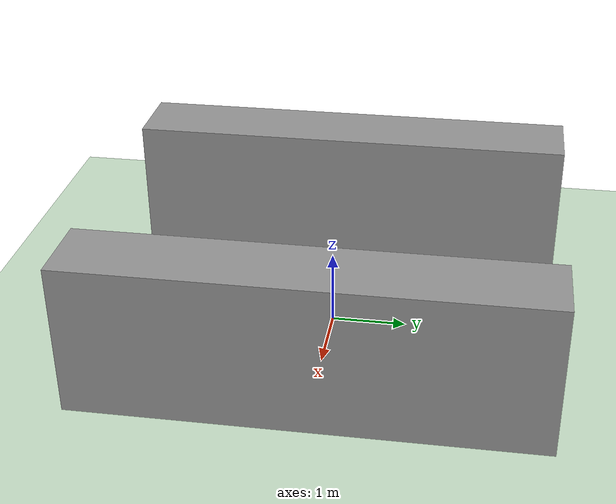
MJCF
<mujoco model="g1_1_warehouse">
  <compiler angle="radian" meshdir="../SDK/unitree_mujoco/unitree_robots/g1/meshes"/>
  <option timestep="0.005" gravity="0 0 -9.81"/>

  <asset>
    <texture type="skybox" builtin="gradient" rgb1=".3 .5 .7" rgb2="0 0 0" width="512" height="512"/>
    <texture name="texplane" type="2d" builtin="checker" rgb1=".2 .3 .4" rgb2=".1 .15 .2" width="512" height="512" mark="cross" markrgb=".8 .8 .8"/>
    <material name="matplane" reflectance="0.3" texture="texplane" texrepeat="1 1" texuniform="true"/>
    <material name="shelf_mat" rgba="0.6 0.6 0.6 1"/>
  </asset>

  <worldbody>
    <light directional="true" diffuse=".8 .8 .8" specular=".2 .2 .2" pos="0 0 5" dir="0 0 -1"/>
    <geom name="floor" pos="0 0 0" size="10 10 .125" type="plane" material="matplane" rgba="0.8 0.9 0.8 1"/>

    <!-- Warehouse Shelf 1 (Left) -->
    <geom name="shelf_1" type="box" size="0.5 3.0 1.0" pos="-2.0 0.0 1.0" material="shelf_mat"/>
    <!-- Warehouse Shelf 2 (Right) -->
    <geom name="shelf_2" type="box" size="0.5 3.0 1.0" pos="2.0 0.0 1.0" material="shelf_mat"/>

    <!-- Robot 1 — spawns slightly to the right -->
    <include file="../SDK/unitree_mujoco/unitree_robots/g1/g1_23dof.xml"/>
  </worldbody>
</mujoco>

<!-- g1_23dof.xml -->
<mujoco model="g1_23dof">
  <compiler angle="radian" meshdir="meshes" />
  <default>
    <default class="leg_motor">
      <joint damping="0.05" armature="0.01" frictionloss="0.2" />
    </default>
    <default class="ankle_motor">
      <joint damping="0.05" armature="0.01" frictionloss="0.2" />
    </default>
    <default class="arm_motor">
      <joint damping="0.05" armature="0.01" frictionloss="0.2" />
    </default>
    <default class="waist_motor">
      <joint damping="0.05" armature="0.01" frictionloss="0.2" />
    </default>

  </default>

  <asset>
    <mesh name="pelvis" file="pelvis.STL" />
    <mesh name="pelvis_contour_link" file="pelvis_contour_link.STL" />
    <mesh name="left_hip_pitch_link" file="left_hip_pitch_link.STL" />
    <mesh name="left_hip_roll_link" file="left_hip_roll_link.STL" />
    <mesh name="left_hip_yaw_link" file="left_hip_yaw_link.STL" />
    <mesh name="left_knee_link" file="left_knee_link.STL" />
    <mesh name="left_ankle_pitch_link" file="left_ankle_pitch_link.STL" />
    <mesh name="left_ankle_roll_link" file="left_ankle_roll_link.STL" />
    <mesh name="right_hip_pitch_link" file="right_hip_pitch_link.STL" />
    <mesh name="right_hip_roll_link" file="right_hip_roll_link.STL" />
    <mesh name="right_hip_yaw_link" file="right_hip_yaw_link.STL" />
    <mesh name="right_knee_link" file="right_knee_link.STL" />
    <mesh name="right_ankle_pitch_link" file="right_ankle_pitch_link.STL" />
    <mesh name="right_ankle_roll_link" file="right_ankle_roll_link.STL" />
    <mesh name="waist_yaw_link" file="waist_yaw_link.STL" />
    <mesh name="torso_link" file="torso_link.STL" />
    <mesh name="logo_link" file="logo_link.STL" />
    <mesh name="head_link" file="head_link.STL" />
    <mesh name="waist_support_link" file="waist_support_link.STL" />
    <mesh name="left_shoulder_pitch_link" file="left_shoulder_pitch_link.STL" />
    <mesh name="left_shoulder_roll_link" file="left_shoulder_roll_link.STL" />
    <mesh name="left_shoulder_yaw_link" file="left_shoulder_yaw_link.STL" />
    <mesh name="left_elbow_link" file="left_elbow_link.STL" />
    <mesh name="left_wrist_roll_rubber_hand" file="left_wrist_roll_rubber_hand.STL" />
    <mesh name="right_shoulder_pitch_link" file="right_shoulder_pitch_link.STL" />
    <mesh name="right_shoulder_roll_link" file="right_shoulder_roll_link.STL" />
    <mesh name="right_shoulder_yaw_link" file="right_shoulder_yaw_link.STL" />
    <mesh name="right_elbow_link" file="right_elbow_link.STL" />
    <mesh name="right_wrist_roll_rubber_hand" file="right_wrist_roll_rubber_hand.STL" />
  </asset>

  <worldbody>
    <body name="pelvis" pos="0 0 0.793">
      <site name="imu" size="0.01" pos="0.0 0.0 0.0" />
      <inertial pos="0 0 -0.07605" quat="1 0 -0.000399148 0" mass="3.813"
        diaginertia="0.010549 0.0093089 0.0079184" />
      <joint name="floating_base_joint" type="free" limited="false" actuatorfrclimited="false" />
      <geom type="mesh" contype="0" conaffinity="0" group="1" density="0" rgba="0.2 0.2 0.2 1"
        mesh="pelvis" />
      <geom type="mesh" contype="0" conaffinity="0" group="1" density="0" rgba="0.7 0.7 0.7 1"
        mesh="pelvis_contour_link" />
      <geom type="mesh" rgba="0.7 0.7 0.7 1" mesh="pelvis_contour_link" />
      <body name="left_hip_pitch_link" pos="0 0.064452 -0.1027">
        <inertial pos="0.002741 0.047791 -0.02606" quat="0.954862 0.293964 0.0302556 0.030122"
          mass="1.35" diaginertia="0.00181517 0.00153422 0.00116212" />
        <joint name="left_hip_pitch_joint" pos="0 0 0" axis="0 1 0" range="-2.5307 2.8798"
          actuatorfrcrange="-88 88" class="leg_motor" />
        <geom type="mesh" contype="0" conaffinity="0" group="1" density="0" rgba="0.2 0.2 0.2 1"
          mesh="left_hip_pitch_link" />
        <geom type="mesh" rgba="0.2 0.2 0.2 1" mesh="left_hip_pitch_link" />
        <body name="left_hip_roll_link" pos="0 0.052 -0.030465" quat="0.996179 0 -0.0873386 0">
          <inertial pos="0.029812 -0.001045 -0.087934"
            quat="0.977808 -1.97119e-05 0.205576 -0.0403793" mass="1.52"
            diaginertia="0.00254986 0.00241169 0.00148755" />
          <joint name="left_hip_roll_joint" pos="0 0 0" axis="1 0 0" range="-0.5236 2.9671"
            actuatorfrcrange="-88 88" class="leg_motor" />
          <geom type="mesh" contype="0" conaffinity="0" group="1" density="0" rgba="0.7 0.7 0.7 1"
            mesh="left_hip_roll_link" />
          <geom type="mesh" rgba="0.7 0.7 0.7 1" mesh="left_hip_roll_link" />
          <body name="left_hip_yaw_link" pos="0.025001 0 -0.12412">
            <inertial pos="-0.057709 -0.010981 -0.15078" quat="0.600598 0.15832 0.223482 0.751181"
              mass="1.702" diaginertia="0.00776166 0.00717575 0.00160139" />
            <joint name="left_hip_yaw_joint" pos="0 0 0" axis="0 0 1" range="-2.7576 2.7576"
              actuatorfrcrange="-88 88" class="leg_motor" />
            <geom type="mesh" contype="0" conaffinity="0" group="1" density="0" rgba="0.7 0.7 0.7 1"
              mesh="left_hip_yaw_link" />
            <geom type="mesh" rgba="0.7 0.7 0.7 1" mesh="left_hip_yaw_link" />
            <body name="left_knee_link" pos="-0.078273 0.0021489 -0.17734"
              quat="0.996179 0 0.0873386 0">
              <inertial pos="0.005457 0.003964 -0.12074"
                quat="0.923418 -0.0327699 0.0158246 0.382067" mass="1.932"
                diaginertia="0.0113804 0.0112778 0.00146458" />
              <joint name="left_knee_joint" pos="0 0 0" axis="0 1 0" range="-0.087267 2.8798"
                actuatorfrcrange="-139 139" class="leg_motor" />
              <geom type="mesh" contype="0" conaffinity="0" group="1" density="0"
                rgba="0.7 0.7 0.7 1" mesh="left_knee_link" />
              <geom type="mesh" rgba="0.7 0.7 0.7 1" mesh="left_knee_link" />
              <body name="left_ankle_pitch_link" pos="0 -9.4445e-05 -0.30001">
                <inertial pos="-0.007269 0 0.011137" quat="0.603053 0.369225 0.369225 0.603053"
                  mass="0.074" diaginertia="1.89e-05 1.40805e-05 6.9195e-06" />
                <joint name="left_ankle_pitch_joint" pos="0 0 0" axis="0 1 0"
                  range="-0.87267 0.5236" actuatorfrcrange="-50 50" class="ankle_motor" />
                <geom type="mesh" contype="0" conaffinity="0" group="1" density="0"
                  rgba="0.7 0.7 0.7 1" mesh="left_ankle_pitch_link" />
                <geom type="mesh" rgba="0.7 0.7 0.7 1" mesh="left_ankle_pitch_link" />
                <body name="left_ankle_roll_link" pos="0 0 -0.017558">
                  <inertial pos="0.026505 0 -0.016425"
                    quat="-0.000481092 0.728482 -0.000618967 0.685065" mass="0.608"
                    diaginertia="0.00167218 0.0016161 0.000217621" />
                  <joint name="left_ankle_roll_joint" pos="0 0 0" axis="1 0 0"
                    range="-0.2618 0.2618" actuatorfrcrange="-50 50" class="ankle_motor" />
                  <geom type="mesh" contype="0" conaffinity="0" group="1" density="0"
                    rgba="0.2 0.2 0.2 1" mesh="left_ankle_roll_link" />
                  <geom size="0.005" pos="-0.05 0.025 -0.03" rgba="0.2 0.2 0.2 1" />
                  <geom size="0.005" pos="-0.05 -0.025 -0.03" rgba="0.2 0.2 0.2 1" />
                  <geom size="0.005" pos="0.12 0.03 -0.03" rgba="0.2 0.2 0.2 1" />
                  <geom size="0.005" pos="0.12 -0.03 -0.03" rgba="0.2 0.2 0.2 1" />
                </body>
              </body>
            </body>
          </body>
        </body>
      </body>
      <body name="right_hip_pitch_link" pos="0 -0.064452 -0.1027">
        <inertial pos="0.002741 -0.047791 -0.02606" quat="0.954862 -0.293964 0.0302556 -0.030122"
          mass="1.35" diaginertia="0.00181517 0.00153422 0.00116212" />
        <joint name="right_hip_pitch_joint" pos="0 0 0" axis="0 1 0" range="-2.5307 2.8798"
          actuatorfrcrange="-88 88" class="leg_motor" />
        <geom type="mesh" contype="0" conaffinity="0" group="1" density="0" rgba="0.2 0.2 0.2 1"
          mesh="right_hip_pitch_link" />
        <geom type="mesh" rgba="0.2 0.2 0.2 1" mesh="right_hip_pitch_link" />
        <body name="right_hip_roll_link" pos="0 -0.052 -0.030465" quat="0.996179 0 -0.0873386 0">
          <inertial pos="0.029812 0.001045 -0.087934" quat="0.977808 1.97119e-05 0.205576 0.0403793"
            mass="1.52" diaginertia="0.00254986 0.00241169 0.00148755" />
          <joint name="right_hip_roll_joint" pos="0 0 0" axis="1 0 0" range="-2.9671 0.5236"
            actuatorfrcrange="-88 88" class="leg_motor" />
          <geom type="mesh" contype="0" conaffinity="0" group="1" density="0" rgba="0.7 0.7 0.7 1"
            mesh="right_hip_roll_link" />
          <geom type="mesh" rgba="0.7 0.7 0.7 1" mesh="right_hip_roll_link" />
          <body name="right_hip_yaw_link" pos="0.025001 0 -0.12412">
            <inertial pos="-0.057709 0.010981 -0.15078" quat="0.751181 0.223482 0.15832 0.600598"
              mass="1.702" diaginertia="0.00776166 0.00717575 0.00160139" />
            <joint name="right_hip_yaw_joint" pos="0 0 0" axis="0 0 1" range="-2.7576 2.7576"
              actuatorfrcrange="-88 88" class="leg_motor" />
            <geom type="mesh" contype="0" conaffinity="0" group="1" density="0" rgba="0.7 0.7 0.7 1"
              mesh="right_hip_yaw_link" />
            <geom type="mesh" rgba="0.7 0.7 0.7 1" mesh="right_hip_yaw_link" />
            <body name="right_knee_link" pos="-0.078273 -0.0021489 -0.17734"
              quat="0.996179 0 0.0873386 0">
              <inertial pos="0.005457 -0.003964 -0.12074"
                quat="0.923439 0.0345276 0.0116333 -0.382012" mass="1.932"
                diaginertia="0.011374 0.0112843 0.00146452" />
              <joint name="right_knee_joint" pos="0 0 0" axis="0 1 0" range="-0.087267 2.8798"
                actuatorfrcrange="-139 139" class="leg_motor" />
              <geom type="mesh" contype="0" conaffinity="0" group="1" density="0"
                rgba="0.7 0.7 0.7 1" mesh="right_knee_link" />
              <geom type="mesh" rgba="0.7 0.7 0.7 1" mesh="right_knee_link" />
              <body name="right_ankle_pitch_link" pos="0 9.4445e-05 -0.30001">
                <inertial pos="-0.007269 0 0.011137" quat="0.603053 0.369225 0.369225 0.603053"
                  mass="0.074" diaginertia="1.89e-05 1.40805e-05 6.9195e-06" />
                <joint name="right_ankle_pitch_joint" pos="0 0 0" axis="0 1 0"
                  range="-0.87267 0.5236" actuatorfrcrange="-50 50" class="ankle_motor" />
                <geom type="mesh" contype="0" conaffinity="0" group="1" density="0"
                  rgba="0.7 0.7 0.7 1" mesh="right_ankle_pitch_link" />
                <geom type="mesh" rgba="0.7 0.7 0.7 1" mesh="right_ankle_pitch_link" />
                <body name="right_ankle_roll_link" pos="0 0 -0.017558">
                  <inertial pos="0.026505 0 -0.016425"
                    quat="0.000481092 0.728482 0.000618967 0.685065" mass="0.608"
                    diaginertia="0.00167218 0.0016161 0.000217621" />
                  <joint name="right_ankle_roll_joint" pos="0 0 0" axis="1 0 0"
                    range="-0.2618 0.2618" actuatorfrcrange="-50 50" class="ankle_motor" />
                  <geom type="mesh" contype="0" conaffinity="0" group="1" density="0"
                    rgba="0.2 0.2 0.2 1" mesh="right_ankle_roll_link" />
                  <geom size="0.005" pos="-0.05 0.025 -0.03" rgba="0.2 0.2 0.2 1" />
                  <geom size="0.005" pos="-0.05 -0.025 -0.03" rgba="0.2 0.2 0.2 1" />
                  <geom size="0.005" pos="0.12 0.03 -0.03" rgba="0.2 0.2 0.2 1" />
                  <geom size="0.005" pos="0.12 -0.03 -0.03" rgba="0.2 0.2 0.2 1" />
                </body>
              </body>
            </body>
          </body>
        </body>
      </body>
      <body name="torso_link" pos="-0.0039635 0 0.054">
        <inertial pos="0.0034309 0.00025505 0.174524"
          quat="0.99988 0.000261157 0.0149809 -0.0038211" mass="9.842"
          diaginertia="0.135151 0.123088 0.0327256" />
        <joint name="waist_yaw_joint" pos="0 0 0" axis="0 0 1" range="-2.618 2.618"
          actuatorfrcrange="-88 88" class="waist_motor" />
        <geom type="mesh" contype="0" conaffinity="0" group="1" density="0" rgba="0.7 0.7 0.7 1"
          mesh="torso_link" />
        <geom type="mesh" rgba="0.7 0.7 0.7 1" mesh="torso_link" />
        <geom pos="0.0039635 0 -0.054" quat="1 0 0 0" type="mesh" contype="0" conaffinity="0"
          group="1" density="0" rgba="0.7 0.7 0.7 1" mesh="waist_yaw_link" />
        <geom pos="0.0039635 0 -0.054" quat="1 0 0 0" type="mesh" contype="0" conaffinity="0"
          group="1" density="0" rgba="0.2 0.2 0.2 1" mesh="logo_link" />
        <geom pos="0.0039635 0 -0.054" quat="1 0 0 0" type="mesh" rgba="0.2 0.2 0.2 1"
          mesh="logo_link" />
        <geom pos="0.0039635 0 -0.054" type="mesh" contype="0" conaffinity="0" group="1" density="0"
          rgba="0.2 0.2 0.2 1" mesh="head_link" />
        <geom pos="0.0039635 0 -0.054" type="mesh" rgba="0.2 0.2 0.2 1" mesh="head_link" />
        <camera name="head_camera" pos="0.15 0 0.45" quat="0.5 -0.5 0.5 -0.5" fovy="90" />
        <geom pos="0.0039635 0 -0.054" quat="1 0 0 0" type="mesh" contype="0" conaffinity="0"
          group="1" density="0" rgba="0.7 0.7 0.7 1" mesh="waist_support_link" />
        <geom pos="0.0039635 0 -0.054" quat="1 0 0 0" type="mesh" rgba="0.7 0.7 0.7 1"
          mesh="waist_support_link" />
        <site name="secondary_imu" size="0.01" pos="-0.03959 -0.00224 0.13792"/>
        <body name="left_shoulder_pitch_link" pos="0.0039563 0.10022 0.23778"
          quat="0.990264 0.139201 1.38722e-05 -9.86868e-05">
          <inertial pos="0 0.035892 -0.011628" quat="0.654152 0.0130458 -0.326267 0.68225"
            mass="0.718" diaginertia="0.000465864 0.000432842 0.000406394" />
          <joint name="left_shoulder_pitch_joint" pos="0 0 0" axis="0 1 0" range="-3.0892 2.6704"
            actuatorfrcrange="-25 25" class="arm_motor" />
          <geom type="mesh" contype="0" conaffinity="0" group="1" density="0" rgba="0.7 0.7 0.7 1"
            mesh="left_shoulder_pitch_link" />
          <geom size="0.03 0.025" pos="0 0.04 -0.01" quat="0.707107 0 0.707107 0" type="cylinder"
            rgba="0.7 0.7 0.7 1" />
          <body name="left_shoulder_roll_link" pos="0 0.038 -0.013831" quat="0.990268 -0.139172 0 0">
            <inertial pos="-0.000227 0.00727 -0.063243"
              quat="0.701256 -0.0196223 -0.00710317 0.712604" mass="0.643"
              diaginertia="0.000691311 0.000618011 0.000388977" />
            <joint name="left_shoulder_roll_joint" pos="0 0 0" axis="1 0 0" range="-1.5882 2.2515"
              actuatorfrcrange="-25 25" class="arm_motor" />
            <geom type="mesh" contype="0" conaffinity="0" group="1" density="0" rgba="0.7 0.7 0.7 1"
              mesh="left_shoulder_roll_link" />
            <geom size="0.03 0.015" pos="-0.004 0.006 -0.053" type="cylinder" rgba="0.7 0.7 0.7 1" />
            <body name="left_shoulder_yaw_link" pos="0 0.00624 -0.1032">
              <inertial pos="0.010773 -0.002949 -0.072009"
                quat="0.716879 -0.0964829 -0.0679942 0.687134" mass="0.734"
                diaginertia="0.00106187 0.00103217 0.000400661" />
              <joint name="left_shoulder_yaw_joint" pos="0 0 0" axis="0 0 1" range="-2.618 2.618"
                actuatorfrcrange="-25 25" class="arm_motor" />
              <geom type="mesh" contype="0" conaffinity="0" group="1" density="0"
                rgba="0.7 0.7 0.7 1" mesh="left_shoulder_yaw_link" />
              <geom type="mesh" rgba="0.7 0.7 0.7 1" mesh="left_shoulder_yaw_link" />
              <body name="left_elbow_link" pos="0.015783 0 -0.080518">
                <inertial pos="0.064956 0.004454 -0.010062"
                  quat="0.541765 0.636132 0.388821 0.388129" mass="0.6"
                  diaginertia="0.000443035 0.000421612 0.000259353" />
                <joint name="left_elbow_joint" pos="0 0 0" axis="0 1 0" range="-1.0472 2.0944"
                  actuatorfrcrange="-25 25" class="arm_motor" />
                <geom type="mesh" contype="0" conaffinity="0" group="1" density="0"
                  rgba="0.7 0.7 0.7 1" mesh="left_elbow_link" />
                <geom type="mesh" rgba="0.7 0.7 0.7 1" mesh="left_elbow_link" />
                <body name="left_wrist_roll_rubber_hand" pos="0.1 0.00188791 -0.01">
                  <inertial pos="0.107947 0.00163512 0.00202245"
                    quat="0.494051 0.504265 0.48416 0.516933" mass="0.356929"
                    diaginertia="0.00200292 0.0019426 0.000195232" />
                  <joint name="left_wrist_roll_joint" pos="0 0 0" axis="1 0 0"
                    range="-1.97222 1.97222" actuatorfrcrange="-25 25" class="arm_motor" />
                  <geom type="mesh" contype="0" conaffinity="0" group="1" density="0"
                    rgba="0.7 0.7 0.7 1" mesh="left_wrist_roll_rubber_hand" />
                  <geom type="mesh" rgba="0.7 0.7 0.7 1" mesh="left_wrist_roll_rubber_hand" />
                </body>
              </body>
            </body>
          </body>
        </body>
        <body name="right_shoulder_pitch_link" pos="0.0039563 -0.10021 0.23778"
          quat="0.990264 -0.139201 1.38722e-05 9.86868e-05">
          <inertial pos="0 -0.035892 -0.011628" quat="0.68225 -0.326267 0.0130458 0.654152"
            mass="0.718" diaginertia="0.000465864 0.000432842 0.000406394" />
          <joint name="right_shoulder_pitch_joint" pos="0 0 0" axis="0 1 0" range="-3.0892 2.6704"
            actuatorfrcrange="-25 25" class="arm_motor" />
          <geom type="mesh" contype="0" conaffinity="0" group="1" density="0" rgba="0.7 0.7 0.7 1"
            mesh="right_shoulder_pitch_link" />
          <geom size="0.03 0.025" pos="0 -0.04 -0.01" quat="0.707107 0 0.707107 0" type="cylinder"
            rgba="0.7 0.7 0.7 1" />
          <body name="right_shoulder_roll_link" pos="0 -0.038 -0.013831"
            quat="0.990268 0.139172 0 0">
            <inertial pos="-0.000227 -0.00727 -0.063243"
              quat="0.712604 -0.00710317 -0.0196223 0.701256" mass="0.643"
              diaginertia="0.000691311 0.000618011 0.000388977" />
            <joint name="right_shoulder_roll_joint" pos="0 0 0" axis="1 0 0" range="-2.2515 1.5882"
              actuatorfrcrange="-25 25" class="arm_motor" />
            <geom type="mesh" contype="0" conaffinity="0" group="1" density="0" rgba="0.7 0.7 0.7 1"
              mesh="right_shoulder_roll_link" />
            <geom size="0.03 0.015" pos="-0.004 -0.006 -0.053" type="cylinder" rgba="0.7 0.7 0.7 1" />
            <body name="right_shoulder_yaw_link" pos="0 -0.00624 -0.1032">
              <inertial pos="0.010773 0.002949 -0.072009"
                quat="0.687134 -0.0679942 -0.0964829 0.716879" mass="0.734"
                diaginertia="0.00106187 0.00103217 0.000400661" />
              <joint name="right_shoulder_yaw_joint" pos="0 0 0" axis="0 0 1" range="-2.618 2.618"
                actuatorfrcrange="-25 25" class="arm_motor" />
              <geom type="mesh" contype="0" conaffinity="0" group="1" density="0"
                rgba="0.7 0.7 0.7 1" mesh="right_shoulder_yaw_link" />
              <geom type="mesh" rgba="0.7 0.7 0.7 1" mesh="right_shoulder_yaw_link" />
              <body name="right_elbow_link" pos="0.015783 0 -0.080518">
                <inertial pos="0.064956 -0.004454 -0.010062"
                  quat="0.388129 0.388821 0.636132 0.541765" mass="0.6"
                  diaginertia="0.000443035 0.000421612 0.000259353" />
                <joint name="right_elbow_joint" pos="0 0 0" axis="0 1 0" range="-1.0472 2.0944"
                  actuatorfrcrange="-25 25" class="arm_motor" />
                <geom type="mesh" contype="0" conaffinity="0" group="1" density="0"
                  rgba="0.7 0.7 0.7 1" mesh="right_elbow_link" />
                <geom type="mesh" rgba="0.7 0.7 0.7 1" mesh="right_elbow_link" />
                <body name="right_wrist_roll_rubber_hand" pos="0.1 -0.00188791 -0.01">
                  <inertial pos="0.107947 -0.00163512 0.00202245"
                    quat="0.516933 0.48416 0.504265 0.494051" mass="0.356929"
                    diaginertia="0.00200292 0.0019426 0.000195232" />
                  <joint name="right_wrist_roll_joint" pos="0 0 0" axis="1 0 0"
                    range="-1.97222 1.97222" actuatorfrcrange="-25 25" class="arm_motor" />
                  <geom type="mesh" contype="0" conaffinity="0" group="1" density="0"
                    rgba="0.7 0.7 0.7 1" mesh="right_wrist_roll_rubber_hand" />
                  <geom type="mesh" rgba="0.7 0.7 0.7 1" mesh="right_wrist_roll_rubber_hand" />
                </body>
              </body>
            </body>
          </body>
        </body>
      </body>
    </body>
    <body name="waist_roll" pos="0 0 20">
      <inertial pos="0.0 0.0 0.0" mass="1e-03"
        diaginertia="1e-03 1e-03 1e-03" />
      <joint name="waist_roll_joint" />
    </body>
    <body name="waist_pitch" pos="0 0 20">
      <inertial pos="0.0 0.0 0.0" mass="1e-03"
        diaginertia="1e-03 1e-03 1e-03" />
      <joint name="waist_pitch_joint" />
    </body>
    <body name="left_wrist_pitch" pos="0 0 20">
      <inertial pos="0.0 0.0 0.0" mass="1e-03"
        diaginertia="1e-03 1e-03 1e-03" />
      <joint name="left_wrist_pitch_joint" />
    </body>
    <body name="left_wrist_yaw" pos="0 0 20">
      <inertial pos="0.0 0.0 0.0" mass="1e-03"
        diaginertia="1e-03 1e-03 1e-03" />
      <joint name="left_wrist_yaw_joint" />
    </body>
    <body name="right_wrist_pitch" pos="0 0 20">
      <inertial pos="0.0 0.0 0.0" mass="1e-03"
        diaginertia="1e-03 1e-03 1e-03" />
      <joint name="right_wrist_pitch_joint" />
    </body>
    <body name="right_wrist_yaw" pos="0 0 20">
      <inertial pos="0.0 0.0 0.0" mass="1e-03"
        diaginertia="1e-03 1e-03 1e-03" />
      <joint name="right_wrist_yaw_joint" />
    </body>
  </worldbody>

  <actuator>
    <motor name="left_hip_pitch" joint="left_hip_pitch_joint" ctrlrange="-88 88" />
    <motor name="left_hip_roll" joint="left_hip_roll_joint" ctrlrange="-88 88" />
    <motor name="left_hip_yaw" joint="left_hip_yaw_joint" ctrlrange="-88 88" />
    <motor name="left_knee" joint="left_knee_joint" ctrlrange="-139 139" />
    <motor name="left_ankle_pitch" joint="left_ankle_pitch_joint" ctrlrange="-50 50" />
    <motor name="left_ankle_roll" joint="left_ankle_roll_joint" ctrlrange="-50 50" />

    <motor name="right_hip_pitch" joint="right_hip_pitch_joint" ctrlrange="-88 88" />
    <motor name="right_hip_roll" joint="right_hip_roll_joint" ctrlrange="-88 88" />
    <motor name="right_hip_yaw" joint="right_hip_yaw_joint" ctrlrange="-88 88" />
    <motor name="right_knee" joint="right_knee_joint" ctrlrange="-139 139" />
    <motor name="right_ankle_pitch" joint="right_ankle_pitch_joint" ctrlrange="-50 50" />
    <motor name="right_ankle_roll" joint="right_ankle_roll_joint" ctrlrange="-50 50" />

    <motor name="waist_yaw" joint="waist_yaw_joint" ctrlrange="-88 88" />
    <motor name="waist_roll" joint="waist_roll_joint" ctrlrange="-50 50" />
    <motor name="waist_pitch" joint="waist_pitch_joint" ctrlrange="-50 50" />

    <motor name="left_shoulder_pitch" joint="left_shoulder_pitch_joint" ctrlrange="-25 25" />
    <motor name="left_shoulder_roll" joint="left_shoulder_roll_joint" ctrlrange="-25 25" />
    <motor name="left_shoulder_yaw" joint="left_shoulder_yaw_joint" ctrlrange="-25 25" />
    <motor name="left_elbow" joint="left_elbow_joint" ctrlrange="-25 25" />
    <motor name="left_wrist_roll" joint="left_wrist_roll_joint" ctrlrange="-25 25" />
    <motor name="left_wrist_pitch" joint="left_wrist_pitch_joint" ctrlrange="-5 5" />
    <motor name="left_wrist_yaw" joint="left_wrist_yaw_joint" ctrlrange="-5 5" />

    <motor name="right_shoulder_pitch" joint="right_shoulder_pitch_joint" ctrlrange="-25 25" />
    <motor name="right_shoulder_roll" joint="right_shoulder_roll_joint" ctrlrange="-25 25" />
    <motor name="right_shoulder_yaw" joint="right_shoulder_yaw_joint" ctrlrange="-25 25" />
    <motor name="right_elbow" joint="right_elbow_joint" ctrlrange="-25 25" />
    <motor name="right_wrist_roll" joint="right_wrist_roll_joint" ctrlrange="-25 25" />
    <motor name="right_wrist_pitch" joint="right_wrist_pitch_joint" ctrlrange="-5 5" />
    <motor name="right_wrist_yaw" joint="right_wrist_yaw_joint" ctrlrange="-5 5" />
  </actuator>

  <sensor>
    <jointpos name="left_hip_pitch_pos" joint="left_hip_pitch_joint" />
    <jointpos name="left_hip_roll_pos" joint="left_hip_roll_joint" />
    <jointpos name="left_hip_yaw_pos" joint="left_hip_yaw_joint" />
    <jointpos name="left_knee_pos" joint="left_knee_joint" />
    <jointpos name="left_ankle_pitch_pos" joint="left_ankle_pitch_joint" />
    <jointpos name="left_ankle_roll_pos" joint="left_ankle_roll_joint" />
    <jointpos name="right_hip_pitch_pos" joint="right_hip_pitch_joint" />
    <jointpos name="right_hip_roll_pos" joint="right_hip_roll_joint" />
    <jointpos name="right_hip_yaw_pos" joint="right_hip_yaw_joint" />
    <jointpos name="right_knee_pos" joint="right_knee_joint" />
    <jointpos name="right_ankle_pitch_pos" joint="right_ankle_pitch_joint" />
    <jointpos name="right_ankle_roll_pos" joint="right_ankle_roll_joint" />
    <jointpos name="waist_yaw_pos" joint="waist_yaw_joint" />
    <jointpos name="waist_roll_pos" joint="waist_roll_joint" />
    <jointpos name="waist_pitch_pos" joint="waist_pitch_joint" />
    <jointpos name="left_shoulder_pitch_pos" joint="left_shoulder_pitch_joint" />
    <jointpos name="left_shoulder_roll_pos" joint="left_shoulder_roll_joint" />
    <jointpos name="left_shoulder_yaw_pos" joint="left_shoulder_yaw_joint" />
    <jointpos name="left_elbow_pos" joint="left_elbow_joint" />
    <jointpos name="left_wrist_roll_pos" joint="left_wrist_roll_joint" />
    <jointpos name="left_wrist_pitch_pos" joint="left_wrist_pitch_joint" />
    <jointpos name="left_wrist_yaw_pos" joint="left_wrist_yaw_joint" />
    <jointpos name="right_shoulder_pitch_pos" joint="right_shoulder_pitch_joint" />
    <jointpos name="right_shoulder_roll_pos" joint="right_shoulder_roll_joint" />
    <jointpos name="right_shoulder_yaw_pos" joint="right_shoulder_yaw_joint" />
    <jointpos name="right_elbow_pos" joint="right_elbow_joint" />
    <jointpos name="right_wrist_roll_pos" joint="right_wrist_roll_joint" />
    <jointpos name="right_wrist_pitch_pos" joint="right_wrist_pitch_joint" />
    <jointpos name="right_wrist_yaw_pos" joint="right_wrist_yaw_joint" />

    <jointvel name="left_hip_pitch_vel" joint="left_hip_pitch_joint" />
    <jointvel name="left_hip_roll_vel" joint="left_hip_roll_joint" />
    <jointvel name="left_hip_yaw_vel" joint="left_hip_yaw_joint" />
    <jointvel name="left_knee_vel" joint="left_knee_joint" />
    <jointvel name="left_ankle_pitch_vel" joint="left_ankle_pitch_joint" />
    <jointvel name="left_ankle_roll_vel" joint="left_ankle_roll_joint" />
    <jointvel name="right_hip_pitch_vel" joint="right_hip_pitch_joint" />
    <jointvel name="right_hip_roll_vel" joint="right_hip_roll_joint" />
    <jointvel name="right_hip_yaw_vel" joint="right_hip_yaw_joint" />
    <jointvel name="right_knee_vel" joint="right_knee_joint" />
    <jointvel name="right_ankle_pitch_vel" joint="right_ankle_pitch_joint" />
    <jointvel name="right_ankle_roll_vel" joint="right_ankle_roll_joint" />
    <jointvel name="waist_yaw_vel" joint="waist_yaw_joint" />
    <jointvel name="waist_roll_vel" joint="waist_roll_joint" />
    <jointvel name="waist_pitch_vel" joint="waist_pitch_joint" />
    <jointvel name="left_shoulder_pitch_vel" joint="left_shoulder_pitch_joint" />
    <jointvel name="left_shoulder_roll_vel" joint="left_shoulder_roll_joint" />
    <jointvel name="left_shoulder_yaw_vel" joint="left_shoulder_yaw_joint" />
    <jointvel name="left_elbow_vel" joint="left_elbow_joint" />
    <jointvel name="left_wrist_roll_vel" joint="left_wrist_roll_joint" />
    <jointvel name="left_wrist_pitch_vel" joint="left_wrist_pitch_joint" />
    <jointvel name="left_wrist_yaw_vel" joint="left_wrist_yaw_joint" />
    <jointvel name="right_shoulder_pitch_vel" joint="right_shoulder_pitch_joint" />
    <jointvel name="right_shoulder_roll_vel" joint="right_shoulder_roll_joint" />
    <jointvel name="right_shoulder_yaw_vel" joint="right_shoulder_yaw_joint" />
    <jointvel name="right_elbow_vel" joint="right_elbow_joint" />
    <jointvel name="right_wrist_roll_vel" joint="right_wrist_roll_joint" />
    <jointvel name="right_wrist_pitch_vel" joint="right_wrist_pitch_joint" />
    <jointvel name="right_wrist_yaw_vel" joint="right_wrist_yaw_joint" />

    <jointactuatorfrc name="left_hip_pitch_torque" joint="left_hip_pitch_joint" />
    <jointactuatorfrc name="left_hip_roll_torque" joint="left_hip_roll_joint" />
    <jointactuatorfrc name="left_hip_yaw_torque" joint="left_hip_yaw_joint" />
    <jointactuatorfrc name="left_knee_torque" joint="left_knee_joint" />
    <jointactuatorfrc name="left_ankle_pitch_torque" joint="left_ankle_pitch_joint" />
    <jointactuatorfrc name="left_ankle_roll_torque" joint="left_ankle_roll_joint" />
    <jointactuatorfrc name="right_hip_pitch_torque" joint="right_hip_pitch_joint" />
    <jointactuatorfrc name="right_hip_roll_torque" joint="right_hip_roll_joint" />
    <jointactuatorfrc name="right_hip_yaw_torque" joint="right_hip_yaw_joint" />
    <jointactuatorfrc name="right_knee_torque" joint="right_knee_joint" />
    <jointactuatorfrc name="right_ankle_pitch_torque" joint="right_ankle_pitch_joint" />
    <jointactuatorfrc name="right_ankle_roll_torque" joint="right_ankle_roll_joint" />
    <jointactuatorfrc name="waist_yaw_torque" joint="waist_yaw_joint" />
    <jointactuatorfrc name="waist_roll_torque" joint="waist_roll_joint" />
    <jointactuatorfrc name="waist_pitch_torque" joint="waist_pitch_joint" />
    <jointactuatorfrc name="left_shoulder_pitch_torque" joint="left_shoulder_pitch_joint" />
    <jointactuatorfrc name="left_shoulder_roll_torque" joint="left_shoulder_roll_joint" />
    <jointactuatorfrc name="left_shoulder_yaw_torque" joint="left_shoulder_yaw_joint" />
    <jointactuatorfrc name="left_elbow_torque" joint="left_elbow_joint" />
    <jointactuatorfrc name="left_wrist_roll_torque" joint="left_wrist_roll_joint" />
    <jointactuatorfrc name="left_wrist_pitch_torque" joint="left_wrist_pitch_joint" />
    <jointactuatorfrc name="left_wrist_yaw_torque" joint="left_wrist_yaw_joint" />
    <jointactuatorfrc name="right_shoulder_pitch_torque" joint="right_shoulder_pitch_joint" />
    <jointactuatorfrc name="right_shoulder_roll_torque" joint="right_shoulder_roll_joint" />
    <jointactuatorfrc name="right_shoulder_yaw_torque" joint="right_shoulder_yaw_joint" />
    <jointactuatorfrc name="right_elbow_torque" joint="right_elbow_joint" />
    <jointactuatorfrc name="right_wrist_roll_torque" joint="right_wrist_roll_joint" />
    <jointactuatorfrc name="right_wrist_pitch_torque" joint="right_wrist_pitch_joint" />
    <jointactuatorfrc name="right_wrist_yaw_torque" joint="right_wrist_yaw_joint" />

    <framequat name="imu_quat" objtype="site" objname="imu" />
    <gyro name="imu_gyro" site="imu" />
    <accelerometer name="imu_acc" site="imu" />

    <framepos name="frame_pos" objtype="site" objname="imu" />
    <framelinvel name="frame_vel" objtype="site" objname="imu" />

    <framequat name="secondary_imu_quat" objtype="site" objname="secondary_imu" />
    <gyro name="secondary_imu_gyro" site="secondary_imu" noise="5e-4" cutoff="34.9"/>
    <accelerometer name="secondary_imu_acc" site="secondary_imu" noise="1e-2" cutoff="157"/>
  </sensor>

</mujoco>
